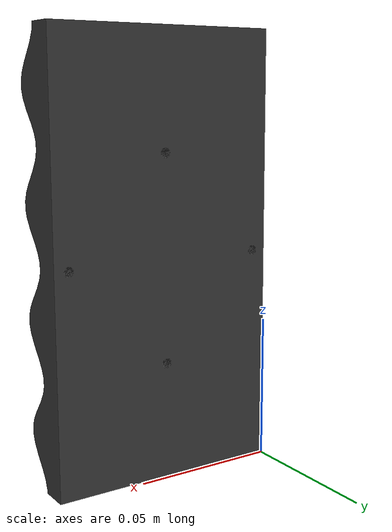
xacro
<?xml version="1.0"?>

<robot xmlns:xacro="http://www.ros.org/wiki/xacro"   name="sinewave_surface">

  <link name="base_link">
    <visual>
      <origin rpy="1.570796 0 0" xyz="0 0 0"/>
      <geometry>
        <mesh filename="$(find contactsensing)/meshes/sinewave_cover_lowscale.stl"/>
      </geometry>
      <material name="grey">
        <color rgba="0.2 0.2 0.2 1.0"/>
      </material>
    </visual>
  </link>
  <joint name="virtual" type="revolute">
    <parent link="base_link"/>
    <child link="virtual_link"/>
    <origin xyz="0 0 0.599704"/>
    <axis xyz="1 0 0" />
    <limit effort="300" velocity="0.1" lower="-3.14" upper="3.14"/>
    <dynamics damping="50" friction="1"/>
  </joint>

  <link name="virtual_link"/>
</robot>
